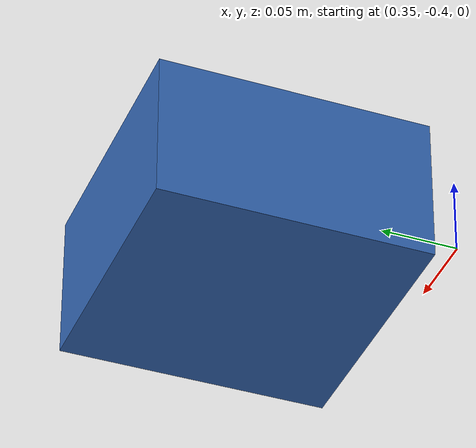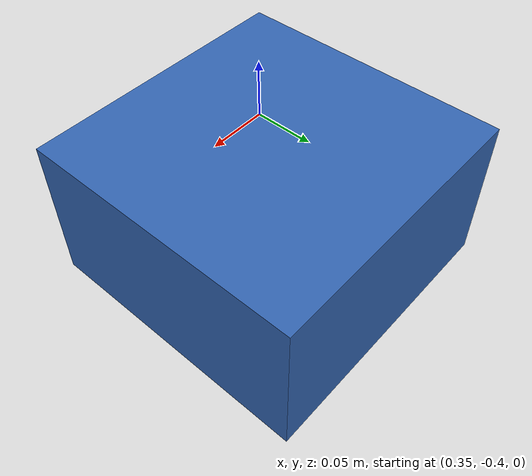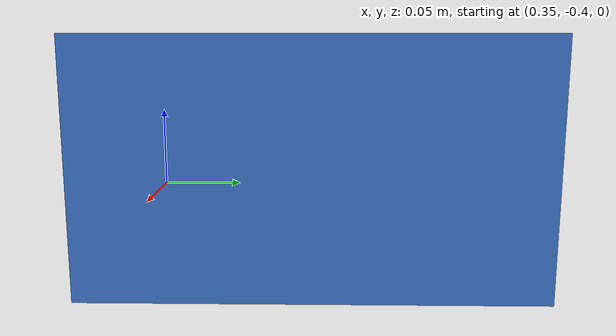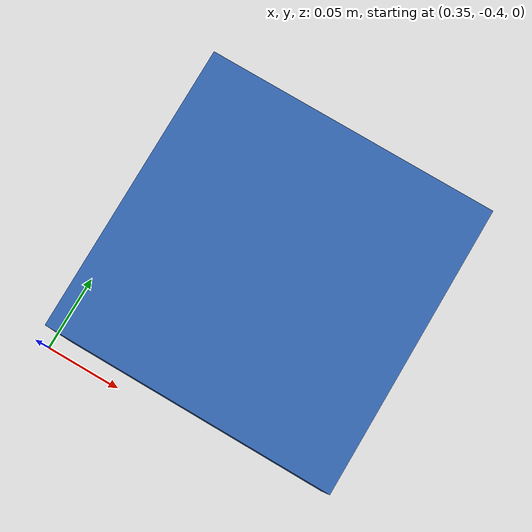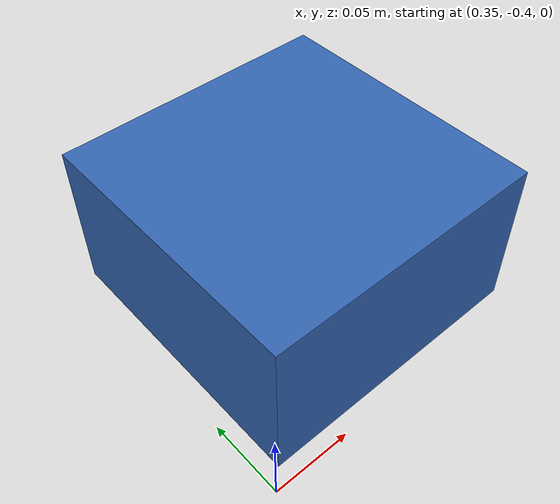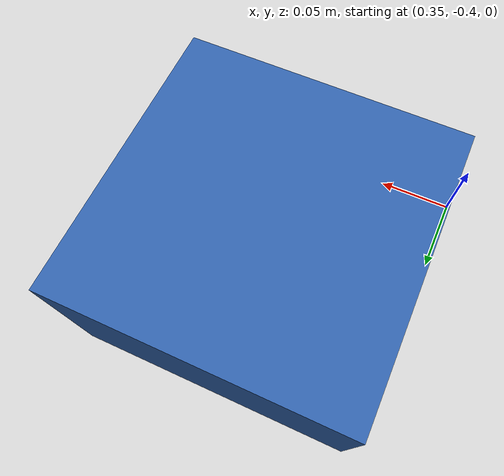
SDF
<?xml version="1.0" ?>
<sdf version="1.6">
  <model name="source_2">
    <static>true</static>
    <pose>0.45 -0.30 0.05 0 0 0</pose>
    <link name="link">
      <collision name="collision">
        <geometry><box><size>0.18 0.18 0.10</size></box></geometry>
      </collision>
      <visual name="visual">
        <geometry><box><size>0.18 0.18 0.10</size></box></geometry>
        <material>
          <ambient>0.2 0.4 0.7 1</ambient>
          <diffuse>0.2 0.4 0.7 1</diffuse>
        </material>
      </visual>
    </link>
  </model>
</sdf>
